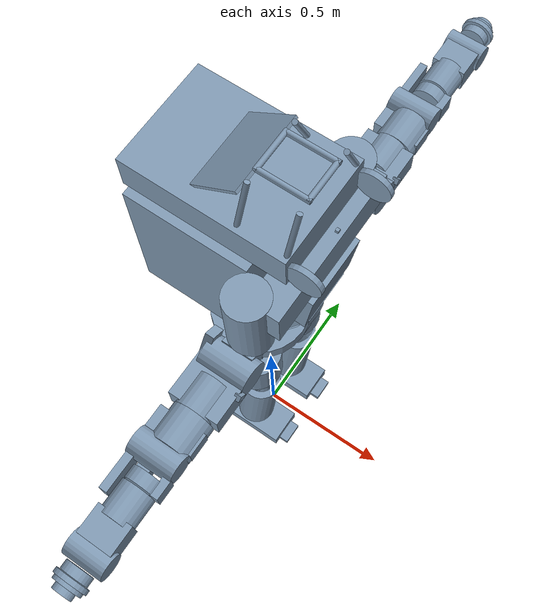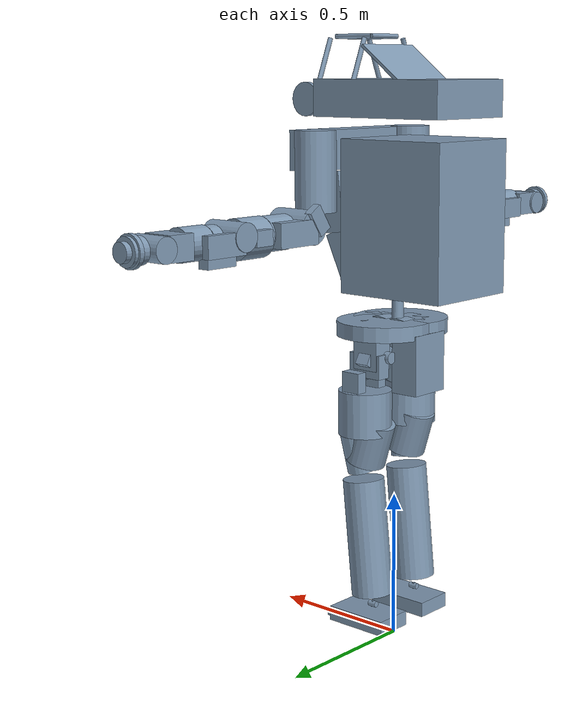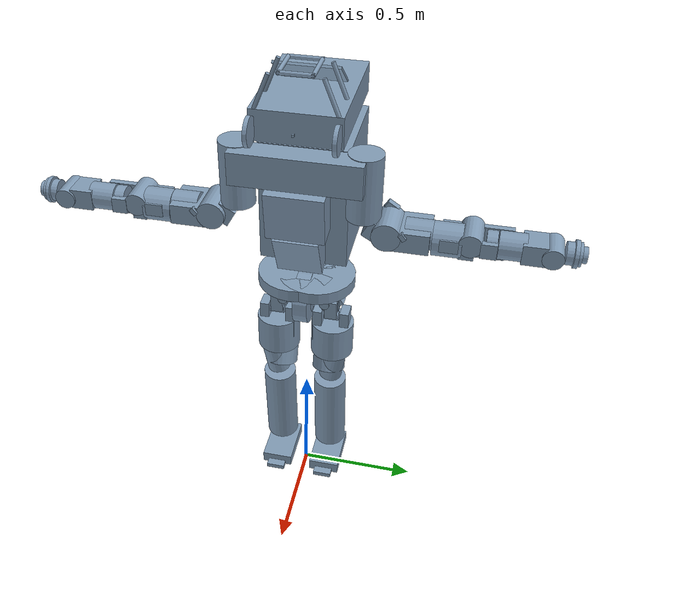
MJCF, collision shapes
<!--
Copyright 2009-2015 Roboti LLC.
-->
<mujoco model="atlas (v1.22)">
    <compiler coordinate="local" angle="radian" meshdir="meshes_v5/" autolimits="true" />
    <size njmax="1000" nuserdata="600000" />
    <default>
        <site type="sphere" size="0.005" />
        <joint limited="true" damping="0.1" armature="0.01" type="hinge" pos="0 0 0" />
        <geom contype="0" conaffinity="1" friction="0.7 0.1 0.1" rgba="0.5 0.6 0.7 1" margin="0.001"
            group="0" />
        <motor ctrlrange="-.95 .95" />
        <default class="viz">
            <geom contype="0" conaffinity="0" group="1" type="mesh" rgba=".6 .6 .7 1" />
        </default>
    </default>

    <asset>
        <mesh name="pelvis" file="pelvis.stl" />
        <mesh name="ltorso" file="ltorso.stl" />
        <mesh name="mtorso" file="mtorso.stl" />
        <mesh name="utorso" file="utorso.stl" />
        <mesh name="r_clav" file="r_clav.stl" />
        <mesh name="r_scap" file="r_scap.stl" />
        <mesh name="r_uarm" file="r_uarm.stl" />
        <mesh name="r_larm" file="r_larm.stl" />
        <mesh name="r_farm" file="r_farm.stl" />
        <mesh name="r_hand" file="r_hand.stl" />
        <mesh name="l_clav" file="l_clav.stl" />
        <mesh name="l_scap" file="l_scap.stl" />
        <mesh name="l_uarm" file="l_uarm.stl" />
        <mesh name="l_larm" file="l_larm.stl" />
        <mesh name="l_farm" file="l_farm.stl" />
        <mesh name="l_hand" file="l_hand.stl" />
        <mesh name="l_uglut" file="l_uglut.stl" />
        <mesh name="l_lglut" file="l_lglut.stl" />
        <mesh name="l_uleg" file="l_uleg.stl" />
        <mesh name="l_lleg" file="l_lleg.stl" />
        <mesh name="l_talus" file="l_talus.stl" />
        <mesh name="l_foot" file="l_foot.stl" />
        <mesh name="r_uglut" file="r_uglut.stl" />
        <mesh name="r_lglut" file="r_lglut.stl" />
        <mesh name="r_uleg" file="r_uleg.stl" />
        <mesh name="r_lleg" file="r_lleg.stl" />
        <mesh name="r_talus" file="r_talus.stl" />
        <mesh name="r_foot" file="r_foot.stl" />

    </asset>
    <option timestep="0.001" />
    <visual>
        <map fogstart="2" fogend="4" />
    </visual>

    <worldbody>

        <!-- joint 0 -->
        <body name="pelvis" pos="0 0 1">
            <inertial pos="0.0111 0 0.0271" quat="0.698584 0.713914 0.0424837 -0.0224092"
                mass="9.509" diaginertia="0.124488 0.116646 0.0957666" />
            <geom class="viz" mesh="pelvis" />
            <geom type="cylinder" size="0.11 0.03" pos="0.046 0 0.01" quat="0.707107 0.707107 0 0" />
            <geom type="cylinder" size="0.11 0.03" pos="-0.03 0 0.01" quat="0.707107 0.707107 0 0" />
            <geom type="cylinder" size="0.16 0.025" pos="0.01 0.042 0.09" />
            <geom type="cylinder" size="0.16 0.025" pos="0.01 -0.042 0.09" />
            <geom type="box" size="0.05 0.075 0.1" pos="-0.1 0 -0.02" />
            <joint type="free" limited='false' damping="0" stiffness="0" armature="0" />
            <body name="ltorso" pos="-0.0125 0 0">
                <inertial pos="-0.0112984 -3.15366e-006 0.0746835"
                    quat="0.997071 0.000128212 0.076485 -0.00012406" mass="2.27"
                    diaginertia="0.003962 0.00341694 0.00169212" />
                <!-- joint 1 -->
                <joint name="back_bkz" axis="0 0 1" range="-0.663225 0.663225" stiffness="1800"
                    damping="60" armature=".025" />
                <geom class="viz" mesh="ltorso" />
                <body name="mtorso" pos="0 0 0.162">
                    <inertial pos="-0.00816266 -0.0131245 0.0305974"
                        quat="0.108378 0.49314 0.746335 0.433648" mass="0.799"
                        diaginertia="0.000536243 0.000487378 0.000358057" />
                    <!-- joint 2 -->
                    <joint name="back_bky" axis="0 1 0" range="-0.219388 0.538783" stiffness="1800"
                        damping="60" armature=".025" />
                    <geom class="viz" mesh="mtorso" />
                    <geom type="cylinder" size="0.02 0.075" pos="0 0 -0.02" />
                    <body name="utorso" pos="0 0 0.05">
                        <inertial pos="-0.0622 0.0023 0.3157"
                            quat="0.450601 -0.0341277 -0.0439518 0.89099" mass="84.409"
                            diaginertia="1.62425 1.5673 0.552443" />
                        <!-- joint 3 -->
                        <joint name="back_bkx" axis="1 0 0" range="-0.523599 0.523599"
                            stiffness="1800" damping="60" armature=".025" />
                        <geom class="viz" mesh="utorso" />
                        <geom type="box" size="0.2 0.175 0.25" pos="-0.102 0 0.25" />
                        <geom type="box" size="0.065 0.25 0.05" pos="0.2 0 0.46"
                            quat="0.707141 0 0.707073 0" />
                        <geom type="box" size="0.1 0.115 0.05" pos="0.2 0 0.285"
                            quat="0.659983 0 0.75128 0" />
                        <geom type="box" size="0.1 0.09 0.05" pos="0.15 0 0.1"
                            quat="0.540302 0 0.841471 0" />
                        <geom type="box" size="0.253153 0.17086 0.06" pos="-0.035 0 0.6265" />
                        <geom type="cylinder" size="0.008 0.065" pos="0.208 0 0.8215"
                            quat="0.707141 0.707073 0 0" />
                        <geom type="cylinder" size="0.008 0.075" pos="0.208 -0.125 0.745"
                            quat="0.981496 -0.191485 0 0" />
                        <geom type="cylinder" size="0.008 0.075" pos="0.208 0.125 0.745"
                            quat="0.981496 0.191485 0 0" />
                        <geom type="cylinder" size="0.008 0.075" pos="0.063 -0.125 0.745"
                            quat="0.981496 -0.191485 0 0" />
                        <geom type="cylinder" size="0.008 0.075" pos="0.063 0.125 0.745"
                            quat="0.981496 0.191485 0 0" />
                        <geom type="cylinder" size="0.008 0.075" pos="0.14 0.06 0.8215"
                            quat="0.500048 0.5 0.499952 0.5" />
                        <geom type="cylinder" size="0.008 0.075" pos="0.14 -0.06 0.8215"
                            quat="0.500048 0.5 0.499952 0.5" />
                        <geom type="box" size="0.1 0.125 0.005" pos="-0.029 0 0.731"
                            quat="0.947651 0 -0.319309 0" />
                        <geom type="cylinder" size="0.008 0.065" pos="0.063 0 0.8215"
                            quat="0.707141 0.707073 0 0" />
                        <geom type="cylinder" size="0.055 0.008" pos="0.261 0.156 0.6215"
                            quat="0.707141 0.707073 0 0" />
                        <geom type="cylinder" size="0.055 0.008" pos="0.261 -0.156 0.6215"
                            quat="0.707141 0.707073 0 0" />
                        <body name="head" pos="0.2546 0 0.6215">
                            <inertial pos="0 0 0" mass="0.1" diaginertia="1e-005 1e-005 1e-005" />
                            <geom type="box" contype="0" conaffinity="0" group="1"
                                size="0.005 0.005 0.005" pos="0 0 0" />
                            <!-- joint 4 -->
                            <joint name="neck_ry" axis="0 1 0" range="-0.602139 1.14319"
                                stiffness="1500" damping="5" armature=".017" />
                        </body>
                        <body name="l_clav" pos="0.1406 0.2256 0.4776">
                            <inertial pos="0 0 -0.084" quat="0.684588 0.177029 -0.177029 0.684588"
                                mass="4.466" diaginertia="0.011217 0.011 0.00178301" />
                            <!-- joint 5 -->
                            <joint name="l_arm_shz" axis="0 0 1" range="-1.5708 0.785398"
                                stiffness="600" damping="20" armature=".02" />
                            <geom class="viz" mesh="l_clav" />
                            <geom type="cylinder" size="0.0555 0.07625" pos="0 0.11 -0.248"
                                quat="0.707107 0 0.707107 0" />
                            <geom type="cylinder" size="0.067 0.13" pos="0.005 0.015 -0.08" />
                            <geom type="box" size="0.05 0.035 0.036" pos="0.004 0.064 -0.247"
                                quat="0.865324 0.501213 0 0" />
                            <body name="l_scap" pos="0 0.11 -0.245">
                                <inertial pos="0 0 0" quat="0.5 0.5 0.5 0.5" mass="3.899"
                                    diaginertia="0.00583 0.00583 0.00319" />
                                <!-- joint 6 -->
                                <joint name="l_arm_shx" axis="1 0 0" range="-1.5708 1.5708"
                                    stiffness="600" damping="20" armature=".02" />
                                <geom class="viz" mesh="l_scap" />
                                <geom type="cylinder" size="0.057 0.0525" pos="-0.005 0.115 -0.014"
                                    quat="0.707107 0.707107 0 0" />
                                <geom type="box" size="0.08 0.085 0.04" pos="-0.005 0.075 -0.015" />
                                <geom type="box" size="0.01 0.0145 0.009" pos="0.076 0.0615 0.0128"
                                    quat="0.431177 0.902268 0 0" />
                                <geom type="box" size="0.014 0.045 0.025" pos="-0.075 -0.015 0.019"
                                    quat="0.877583 0.479426 0 0" />
                                <body name="l_uarm" pos="0 0.187 -0.016">
                                    <inertial pos="0 -0.065 0" quat="0.707107 0.707107 0 0"
                                        mass="4.386" diaginertia="0.00656 0.00656 0.00358" />
                                    <!-- joint 7 -->
                                    <joint name="l_arm_ely" axis="0 1 0" range="0 3.14159"
                                        stiffness="600" damping="20" armature=".02" />
                                    <geom class="viz" mesh="l_uarm" />
                                    <geom type="cylinder" size="0.065 0.055" pos="0 0.035 -0.005"
                                        quat="0.707105 0.707108 0 0" />
                                    <geom type="box" size="0.025 0.035 0.075"
                                        pos="-0.01 0.043 0.002" quat="0.707107 0 0.707107 0" />
                                    <body name="l_larm" pos="0 0.119 0.0092">
                                        <inertial pos="0 0 0" quat="0.5 0.5 0.5 0.5" mass="3.248"
                                            diaginertia="0.00446 0.00446 0.00265" />
                                        <!-- joint 8 -->
                                        <joint name="l_arm_elx" axis="1 0 0" range="0 2.35619"
                                            stiffness="450" damping="15" armature=".015" />
                                        <geom class="viz" mesh="l_larm" />
                                        <geom type="cylinder" size="0.051 0.02" pos="0 0.075 -0.01"
                                            quat="0.707107 -0.707107 0 0" />
                                        <geom type="cylinder" size="0.045 0.0735"
                                            pos="-0.012 0 0.0025" quat="0.707107 0 0.707107 0" />
                                        <geom type="box" size="0.0125 0.0775 0.035"
                                            pos="-0.07 0.077 -0.015" />
                                        <geom type="box" size="0.0125 0.03 0.03"
                                            pos="0.05 0.067 -0.009" />
                                        <geom type="box" size="0.02 0.0575 0.025"
                                            pos="-0.032 0.071 -0.06" />
                                        <geom type="box" size="0.0225 0.0275 0.0115"
                                            pos="0.03 -0.01 -0.05" />
                                        <body name="l_ufarm" pos="0 0.29955 -0.00921">
                                            <inertial pos="0.00015 0.08296 0.00037"
                                                quat="0.707107 0.707107 0 0" mass="2.4798"
                                                diaginertia="0.012731 0.011948 0.002857" />
                                            <!-- joint 9 -->
                                            <joint name="l_arm_wry" axis="0 1 0"
                                                range="-3.011 3.011" stiffness="150" damping="15"
                                                armature=".015" />
                                            <geom class="viz" mesh="l_farm" />
                                            <geom type="cylinder" size="0.053 0.05" pos="0 -0.15 0"
                                                quat="0.707388 0.706825 0 0" />
                                            <geom type="box" size="0.04 0.045 0.055"
                                                pos="-0.001 -0.07 0" quat="0.707107 0 0.707107 0" />
                                            <geom type="cylinder" size="0.04 0.0625"
                                                pos="0 -0.005 0" quat="0.707388 0 0.706825 0" />
                                            <body name="l_lfarm" pos="0 0 0">
                                                <inertial pos="0.00017 -0.02515 0.00163"
                                                    quat="0.5 0.5 -0.5 0.5" mass="0.648"
                                                    diaginertia="0.000825 0.000764 0.000429" />
                                                <!-- joint 10 -->
                                                <joint name="l_arm_wrx" axis="1 0 0"
                                                    range="-1.7628 1.7628" stiffness="150"
                                                    damping="15" armature=".015" />
                                                <geom type="cylinder" size="0.031 0.01"
                                                    pos="0 0.104 0" quat="0.707107 0.707107 0 0" />
                                                <geom type="cylinder" size="0.045 0.0075"
                                                    pos="0 0.087 0" quat="0.707107 0.707107 0 0" />
                                                <geom type="cylinder" size="0.052 0.0075"
                                                    pos="0 0.075 0" quat="0.707107 0.707107 0 0" />
                                                <geom type="cylinder" size="0.043 0.0135"
                                                    pos="0 0.052 0" quat="0.707107 0.707107 0 0" />
                                                <body name="l_hand" pos="0 0 0">
                                                    <inertial pos="0.00016 -0.08159 2e-005"
                                                        quat="0.707107 0 0 0.707107" mass="0.5839"
                                                        diaginertia="0.000477 0.000388 0.000379" />
                                                    <!-- joint 11 -->
                                                    <joint name="l_arm_wry2" axis="0 1 0"
                                                        range="-2.9671 2.9671" stiffness="150"
                                                        damping="15" armature=".015" />
                                                    <geom class="viz" mesh="l_hand" />
                                                </body>
                                            </body>
                                        </body>
                                    </body>
                                </body>
                            </body>
                        </body>
                        <body name="r_clav" pos="0.1406 -0.2256 0.4776">
                            <inertial pos="0 0 -0.084" quat="0.684588 0.177029 -0.177029 0.684588"
                                mass="4.466" diaginertia="0.011217 0.011 0.00178301" />
                            <!-- joint 12 -->
                            <joint name="r_arm_shz" axis="0 0 1" range="-0.785398 1.5708"
                                stiffness="600" damping="20" armature=".02" />
                            <geom class="viz" mesh="r_clav" />
                            <geom type="cylinder" size="0.0555 0.07625" pos="0 -0.11 -0.248"
                                quat="0.707107 0 0.707107 0" />
                            <geom type="cylinder" size="0.067 0.13" pos="0.005 -0.015 -0.08" />
                            <geom type="box" size="0.05 0.035 0.036" pos="0.004 -0.064 -0.247"
                                quat="0.865324 0.501213 0 0" />
                            <body name="r_scap" pos="0 -0.11 -0.245">
                                <inertial pos="0 0 0" quat="0.5 0.5 0.5 0.5" mass="3.899"
                                    diaginertia="0.00583 0.00583 0.00319" />
                                <!-- joint 13 -->
                                <joint name="r_arm_shx" axis="1 0 0" range="-1.5708 1.5708"
                                    stiffness="300" damping="20" armature=".02" />
                                <geom class="viz" mesh="r_scap" />
                                <geom type="cylinder" size="0.057 0.0525" pos="-0.005 -0.115 -0.014"
                                    quat="0.707107 0.707107 0 0" />
                                <geom type="box" size="0.08 0.085 0.04" pos="-0.005 -0.075 -0.015" />
                                <geom type="box" size="0.01 0.0145 0.009" pos="0.076 -0.0615 0.0128"
                                    quat="0.431177 0.902268 0 0" />
                                <geom type="box" size="0.014 0.045 0.025" pos="-0.075 0.015 0.019"
                                    quat="0.877583 0.479426 0 0" />
                                <body name="r_uarm" pos="0 -0.187 -0.016">
                                    <inertial pos="0 0.065 0" quat="0.707107 0.707107 0 0"
                                        mass="4.386" diaginertia="0.00656 0.00656 0.00358" />
                                    <!-- joint 14 -->
                                    <joint name="r_arm_ely" axis="0 1 0" range="0 3.14159"
                                        stiffness="600" damping="20" armature=".02" />
                                    <geom class="viz" mesh="r_uarm" />
                                    <geom type="cylinder" size="0.065 0.055" pos="0 -0.035 -0.005"
                                        quat="0.707105 0.707108 0 0" />
                                    <geom type="box" size="0.025 0.035 0.075"
                                        pos="-0.01 -0.043 0.002" quat="0.707107 0 0.707107 0" />
                                    <body name="r_larm" pos="0 -0.119 0.0092">
                                        <inertial pos="0 0 0" quat="0.5 0.5 0.5 0.5" mass="3.248"
                                            diaginertia="0.00446 0.00446 0.00265" />
                                        <!-- joint 15 -->
                                        <joint name="r_arm_elx" axis="1 0 0" range="-2.35619 0"
                                            stiffness="450" damping="15" armature=".015" />
                                        <geom class="viz" mesh="r_larm" />
                                        <geom type="cylinder" size="0.051 0.02" pos="0 -0.075 -0.01"
                                            quat="0.707107 -0.707107 0 0" />
                                        <geom type="cylinder" size="0.045 0.0735"
                                            pos="-0.012 0 0.0025" quat="0.707107 0 0.707107 0" />
                                        <geom type="box" size="0.0125 0.0775 0.035"
                                            pos="-0.07 -0.077 -0.015" />
                                        <geom type="box" size="0.0125 0.03 0.03"
                                            pos="0.05 -0.067 -0.009" />
                                        <geom type="box" size="0.02 0.0575 0.025"
                                            pos="-0.032 -0.071 -0.06" />
                                        <geom type="box" size="0.0225 0.0275 0.0115"
                                            pos="0.03 0.01 -0.05" />
                                        <body name="r_ufarm" pos="0 -0.29955 -0.00921">
                                            <inertial pos="0.00015 0.08296 0.00037"
                                                quat="0.707107 0.707107 0 0" mass="2.4798"
                                                diaginertia="0.012731 0.011948 0.002857" />
                                            <!-- joint 16 -->
                                            <joint name="r_arm_wry" axis="0 1 0"
                                                range="-3.011 3.011" stiffness="150" damping="15"
                                                armature=".015" />
                                            <geom class="viz" mesh="r_farm" />
                                            <geom type="cylinder" size="0.053 0.05" pos="0 0.15 0"
                                                quat="0.707388 0.706825 0 0" />
                                            <geom type="box" size="0.04 0.045 0.055"
                                                pos="-0.001 0.07 0" quat="0.707107 0 0.707107 0" />
                                            <geom type="cylinder" size="0.04 0.0625" pos="0 0.005 0"
                                                quat="0.707388 0 0.706825 0" />
                                            <body name="r_lfarm" pos="0 0 0">
                                                <inertial pos="0.00017 -0.02515 0.00163"
                                                    quat="0.5 0.5 -0.5 0.5" mass="0.648"
                                                    diaginertia="0.000825 0.000764 0.000429" />
                                                <!-- joint 17 -->
                                                <joint name="r_arm_wrx" axis="1 0 0"
                                                    range="-1.7628 1.7628" stiffness="150"
                                                    damping="15" armature=".015" />
                                                <geom type="cylinder" size="0.031 0.01"
                                                    pos="0 -0.104 0" quat="0.707107 0.707107 0 0" />
                                                <geom type="cylinder" size="0.045 0.0075"
                                                    pos="0 -0.087 0" quat="0.707107 0.707107 0 0" />
                                                <geom type="cylinder" size="0.052 0.0075"
                                                    pos="0 -0.075 0" quat="0.707107 0.707107 0 0" />
                                                <geom type="cylinder" size="0.043 0.0135"
                                                    pos="0 -0.052 0" quat="0.707107 0.707107 0 0" />
                                                <body name="r_hand" pos="0 0 0">
                                                    <inertial pos="0.00016 -0.08159 2e-005"
                                                        quat="0.707107 0 0 0.707107" mass="0.5839"
                                                        diaginertia="0.000477 0.000388 0.000379" />
                                                    <!-- joint 18 -->
                                                    <joint name="r_arm_wry2" axis="0 1 0"
                                                        range="-2.9671 2.9671" stiffness="150"
                                                        damping="15" armature=".015" />
                                                    <geom class="viz" mesh="r_hand" />
                                                </body>
                                            </body>
                                        </body>
                                    </body>
                                </body>
                            </body>
                        </body>
                    </body>
                </body>
            </body>
            <body name="l_uglut" pos="0 0.089 0">
                <inertial pos="0.00529262 -0.00344732 0.00313046"
                    quat="0.999122 -7.72169e-005 0.0419028 -0.000305187" mass="1.959"
                    diaginertia="0.000745109 0.000688179 0.000410071" />
                <!-- joint 19 -->
                <joint name="l_leg_hpz" axis="0 0 1" range="-0.174358 0.786794" stiffness="5000"
                    damping="300" armature=".02" />
                <geom class="viz" mesh="l_uglut" />
                <geom type="box" size="0.025 0.05 0.05" pos="0.01 0.005 0"
                    quat="0.965694 0.259684 0 0" />
                <geom type="cylinder" size="0.019841 0.040421" pos="0 0 0" />
                <body name="l_lglut" pos="0 0 0">
                    <inertial pos="0.0133341 0.0170484 -0.0312052"
                        quat="0.353465 0.600383 0.388609 0.602981" mass="0.898"
                        diaginertia="0.00133867 0.000995812 0.000690275" />
                    <!-- joint 20 -->
                    <joint name="l_leg_hpx" axis="1 0 0" range="-0.523599 0.523599" stiffness="5000"
                        damping="300" armature=".02" />
                    <geom class="viz" mesh="l_lglut" />
                    <geom type="box" size="0.0625 0.025 0.04" pos="0.015 0.026 -0.028" />
                    <geom type="cylinder" size="0.0200969 0.030153" pos="0.05 0.027488 -0.067"
                        quat="0.707107 0.707107 0 0" />
                    <geom type="cylinder" size="0.02 0.072" pos="0.0115 0 0"
                        quat="0.707107 0 0.707107 0" />
                    <geom type="box" size="0.04875 0.0345 0.0515" pos="0.01 0.02 0.01" />
                    <body name="l_uleg" pos="0.05 0.0225 -0.066">
                        <inertial pos="0 0 -0.21" mass="8.204" diaginertia="0.09 0.09 0.02" />
                        <!-- joint 21 -->
                        <joint name="l_leg_hpy" axis="0 1 0" range="-1.61234 0.65764"
                            stiffness="5000" damping="300" armature=".02" />
                        <geom class="viz" mesh="l_uleg" />
                        <geom type="cylinder" size="0.09 0.075" pos="-0.0199 0.00585 -0.122" />
                        <geom type="cylinder" size="0.07 0.075" pos="-0.032 -0.005 -0.224"
                            quat="0.988771 0 -0.149438 0" />
                        <geom type="cylinder" size="0.05 0.075" pos="0.003 0.015 -0.254"
                            quat="0.995083 -0.0747715 0.0647716 0.004867" />
                        <geom type="box" size="0.035 0.019 0.075" pos="-0.007 -0.053 -0.052" />
                        <geom type="box" size="0.035 0.019 0.07" pos="-0.017 0.0595 -0.049" />
                        <body name="l_lleg" pos="-0.05 0 -0.374">
                            <inertial pos="0.001 0 -0.187" quat="0.999751 0 0.0223266 0"
                                mass="4.515" diaginertia="0.0771341 0.076 0.00986594" />
                            <!-- joint 22 -->
                            <joint name="l_leg_kny" axis="0 1 0" range="0 2.35637" stiffness="5000"
                                damping="300" armature=".02" />
                            <geom class="viz" mesh="l_lleg" />
                            <geom type="cylinder" size="0.07 0.2" pos="0.02 0.00295 -0.182"
                                quat="0.99875 0 0.0499792 0" />
                            <body name="l_talus" pos="0 0 -0.422">
                                <inertial pos="0 0 0" quat="0.5 0.5 -0.5 0.5" mass="0.125"
                                    diaginertia="1.30101e-005 1.01674e-005 8.42775e-006" />
                                <!-- joint 23 -->
                                <joint name="l_leg_aky" axis="0 1 0" range="-1 0.7" stiffness="5000"
                                    damping="200" armature=".01" />
                                <geom class="viz" mesh="l_talus" />
                                <geom type="cylinder" size="0.010181 0.014771" pos="0 0 0"
                                    quat="0.707107 0 0.707107 0" />
                                <geom type="cylinder" size="0.010348 0.0050295" pos="0 0 0"
                                    quat="0.707107 0.707107 0 0" />
                                <body name="l_foot" pos="0 0 0">
                                    <inertial pos="0.027 0 -0.067" quat="0 0.707107 0 0.707107"
                                        mass="2.41" diaginertia="0.008 0.007 0.002" />
                                    <!-- joint 24 -->
                                    <joint name="l_leg_akx" axis="1 0 0" range="-0.8 0.8"
                                        stiffness="5000" damping="200" armature=".01" />
                                    <geom class="viz" mesh="l_foot" />
                                    <geom type="box" size="0.1135 0.0669435 0.025"
                                        pos="0.023 0 -0.049119" />
                                    <geom type="box" size="0.05 0.04 0.01" pos="0.1225 0 -0.0641" />
                                </body>
                            </body>
                        </body>
                    </body>
                </body>
            </body>
            <body name="r_uglut" pos="0 -0.089 0">
                <inertial pos="0.00529262 0.00344732 0.00313046"
                    quat="0.999122 7.72169e-005 0.0419028 0.000305187" mass="1.959"
                    diaginertia="0.000745109 0.000688179 0.000410071" />
                <!-- joint 25 -->
                <joint name="r_leg_hpz" axis="0 0 1" range="-0.786794 0.174358" stiffness="5000"
                    damping="300" armature=".02" />
                <geom class="viz" mesh="r_uglut" />
                <geom type="box" size="0.025 0.05 0.05" pos="0.01 -0.005 0"
                    quat="0.965694 -0.259684 0 0" />
                <geom type="cylinder" size="0.019841 0.040421" pos="0 0 0" />
                <body name="r_lglut" pos="0 0 0">
                    <inertial pos="0.0133341 -0.0170484 -0.0312052"
                        quat="0.602981 0.388609 0.600383 0.353465" mass="0.898"
                        diaginertia="0.00133867 0.000995812 0.000690275" />
                    <!-- joint 26 -->
                    <joint name="r_leg_hpx" axis="1 0 0" range="-0.523599 0.523599" stiffness="5000"
                        damping="300" armature=".02" />
                    <geom class="viz" mesh="r_lglut" />
                    <geom type="box" size="0.0625 0.025 0.04" pos="0.015 -0.026 -0.028" />
                    <geom type="cylinder" size="0.0200969 0.030153" pos="0.05 -0.027488 -0.067"
                        quat="0.707107 0.707107 0 0" />
                    <geom type="cylinder" size="0.02 0.071" pos="0.0105 0 0"
                        quat="0.707107 0 0.707107 0" />
                    <geom type="box" size="0.04875 0.0345 0.0515" pos="0.01 -0.02 0.01" />
                    <body name="r_uleg" pos="0.05 -0.0225 -0.066">
                        <inertial pos="0 0 -0.21" mass="8.204" diaginertia="0.09 0.09 0.02" />
                        <!-- joint 27 -->
                        <joint name="r_leg_hpy" axis="0 1 0" range="-1.61234 0.65764"
                            stiffness="5000" damping="300" armature=".02" />
                        <geom class="viz" mesh="r_uleg" />
                        <geom type="cylinder" size="0.09 0.075" pos="-0.0199 -0.00585 -0.122" />
                        <geom type="cylinder" size="0.07 0.075" pos="-0.032 0.005 -0.224"
                            quat="0.988771 0 -0.149438 0" />
                        <geom type="cylinder" size="0.05 0.075" pos="0.003 -0.015 -0.254"
                            quat="0.995083 0.0747715 0.0647716 -0.004867" />
                        <geom type="box" size="0.035 0.019 0.075" pos="-0.007 0.053 -0.052" />
                        <geom type="box" size="0.035 0.019 0.07" pos="-0.017 -0.0595 -0.049" />
                        <body name="r_lleg" pos="-0.05 0 -0.374">
                            <inertial pos="0.001 0 -0.187" quat="0.999751 0 0.0223266 0"
                                mass="4.515" diaginertia="0.0771341 0.076 0.00986594" />
                            <!-- joint 28 -->
                            <joint name="r_leg_kny" axis="0 1 0" range="0 2.35637" stiffness="5000"
                                damping="300" armature=".02" />
                            <geom class="viz" mesh="r_lleg" />
                            <geom type="cylinder" size="0.07 0.2" pos="0.02 -0.00295 -0.182"
                                quat="0.99875 0 0.0499792 0" />
                            <body name="r_talus" pos="0 0 -0.422">
                                <inertial pos="0 0 0" quat="0.5 0.5 -0.5 0.5" mass="0.125"
                                    diaginertia="1.30101e-005 1.01674e-005 8.42775e-006" />
                                <!-- joint 29 -->
                                <joint name="r_leg_aky" axis="0 1 0" range="-1 0.7" stiffness="5000"
                                    damping="200" armature=".01" />
                                <geom class="viz" mesh="r_talus" />
                                <geom type="cylinder" size="0.010181 0.014771" pos="0 0 0"
                                    quat="0.707107 0 0.707107 0" />
                                <geom type="cylinder" size="0.010348 0.0050295" pos="0 0 0"
                                    quat="0.707107 0.707107 0 0" />
                                <body name="r_foot" pos="0 0 0">
                                    <inertial pos="0.027 0 -0.067" quat="0 0.707107 0 0.707107"
                                        mass="2.41" diaginertia="0.008 0.007 0.002" />
                                    <!-- joint 30 -->
                                    <joint name="r_leg_akx" axis="1 0 0" range="-0.8 0.8"
                                        stiffness="5000" damping="200" armature=".01" />
                                    <geom class="viz" mesh="r_foot" />
                                    <geom type="box" size="0.1135 0.0669435 0.025"
                                        pos="0.023 0 -0.049119" />
                                    <geom type="box" size="0.05 0.04 0.01" pos="0.1225 0 -0.0641" />
                                </body>
                            </body>
                        </body>
                    </body>
                </body>
            </body>
        </body>
    </worldbody>

    <actuator>
        <motor name="back_bkz_actuator" joint="back_bkz" gear="106" />
        <motor name="back_bky_actuator" joint="back_bky" gear="445" />
        <motor name="back_bkx_actuator" joint="back_bkx" gear="300" />
        <motor name="neck_ry_actuator" joint="neck_ry" gear="300" />
        <motor name="l_arm_shz_actuator" joint="l_arm_shz" gear="87" />
        <motor name="l_arm_shx_actuator" joint="l_arm_shx" gear="99" />
        <motor name="l_arm_ely_actuator" joint="l_arm_ely" gear="63" />
        <motor name="l_arm_elx_actuator" joint="l_arm_elx" gear="112" />
        <motor name="l_arm_wry_actuator" joint="l_arm_wry" gear="25" />
        <motor name="l_arm_wrx_actuator" joint="l_arm_wrx" gear="25" />
        <motor name="l_arm_wry2_ctuator" joint="l_arm_wry2" gear="25" />
        <motor name="r_arm_shz_actuator" joint="r_arm_shz" gear="87" />
        <motor name="r_arm_shx_actuator" joint="r_arm_shx" gear="99" />
        <motor name="r_arm_ely_actuator" joint="r_arm_ely" gear="63" />
        <motor name="r_arm_elx_actuator" joint="r_arm_elx" gear="112" />
        <motor name="r_arm_wry_actuator" joint="r_arm_wry" gear="25" />
        <motor name="r_arm_wrx_actuator" joint="r_arm_wrx" gear="25" />
        <motor name="r_arm_wry2_actuator" joint="r_arm_wry2" gear="25" />
        <motor name="l_leg_hpz_actuator" joint="l_leg_hpz" gear="275" />
        <motor name="l_leg_hpx_actuator" joint="l_leg_hpx" gear="530" />
        <motor name="l_leg_hpy_actuator" joint="l_leg_hpy" gear="840" />
        <motor name="l_leg_kny_actuator" joint="l_leg_kny" gear="890" />
        <motor name="l_leg_aky_actuator" joint="l_leg_aky" gear="740" />
        <motor name="l_leg_akx_actuator" joint="l_leg_akx" gear="360" />
        <motor name="r_leg_hpz_actuator" joint="r_leg_hpz" gear="275" />
        <motor name="r_leg_hpx_actuator" joint="r_leg_hpx" gear="530" />
        <motor name="r_leg_hpy_actuator" joint="r_leg_hpy" gear="840" />
        <motor name="r_leg_kny_actuator" joint="r_leg_kny" gear="890" />
        <motor name="r_leg_aky_actuator" joint="r_leg_aky" gear="740" />
        <motor name="r_leg_akx_actuator" joint="r_leg_akx" gear="360" />
    </actuator>

</mujoco>
